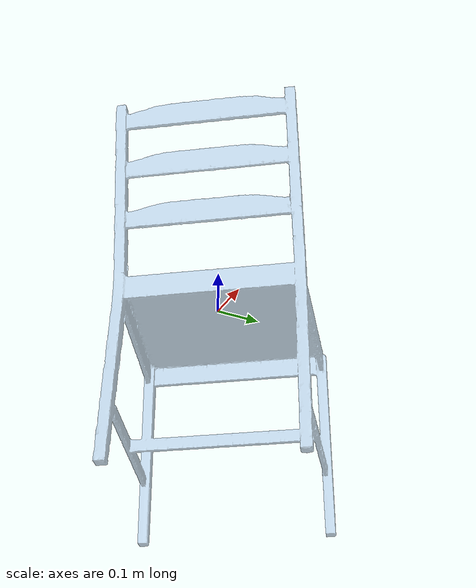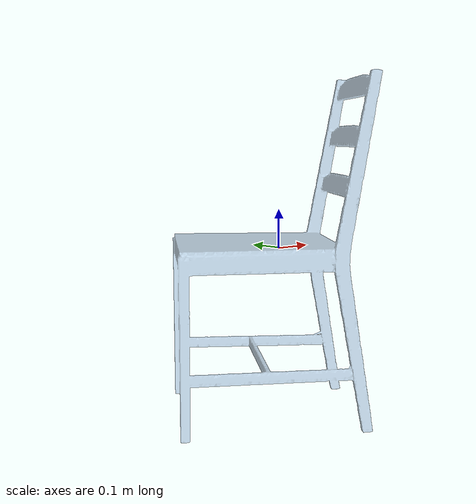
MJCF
<mujoco model="woodchair">
    <compiler meshdir="./"/>

    <default>
        <geom friction="0.9 0.5 0.5" rgba="0.7 0.8 0.9 0.7"/>
        <joint damping="0.5"/>
    </default>

    <asset>
        <mesh name="woodchair_mesh" file="woodchair.obj" scale="1 1 1"/>
    </asset>

    <worldbody>
        <body name="woodchair_link">
            <inertial pos="0 0 0" mass="0.1" diaginertia="0.002 0.002 0.002"/>
            <geom name="woodchair" type="mesh" mesh="woodchair_mesh"
                  pos="0 0 0" quat="1 0 0 0"
                  rgba="0.7 0.8 0.9 0.7"
                  friction="0.9 0.5 0.5"
                  solref="0.02 1"
                  solimp="0.9 0.95 0.001"/>
        </body>
    </worldbody>
</mujoco>
